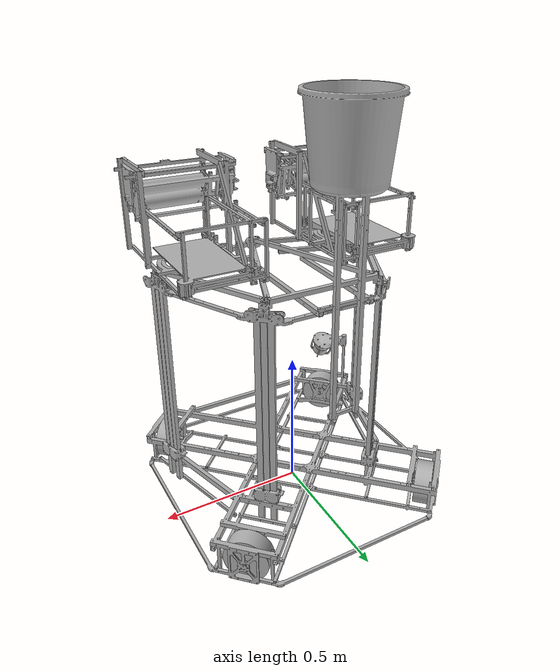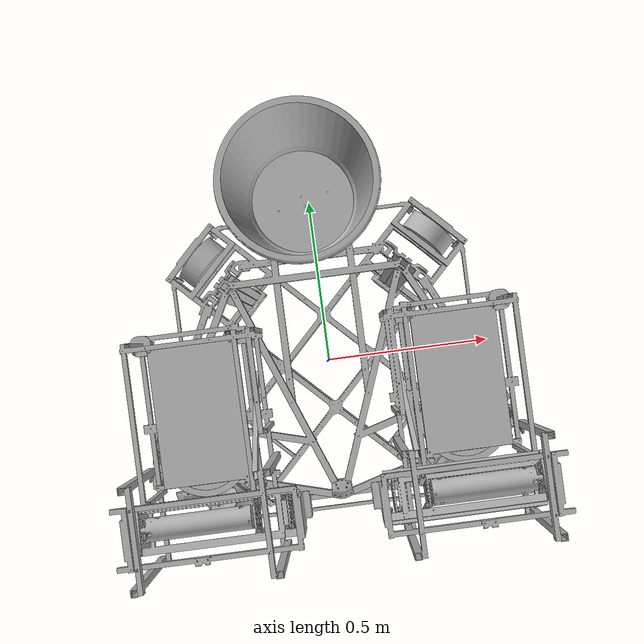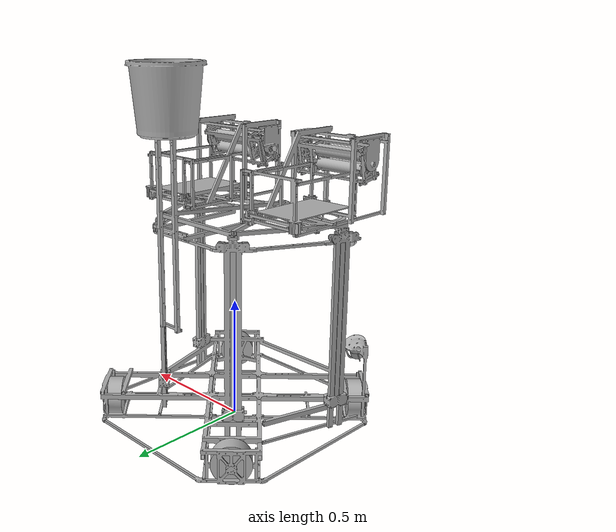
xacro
<?xml version="1.0" ?>
<robot name="r26a" xmlns:xacro="http://www.ros.org/wiki/xacro">

<xacro:include filename="$(find r26a_description)/urdf/materials.xacro" />
<xacro:include filename="$(find r26a_description)/urdf/r26a.ros2control" />
<xacro:include filename="$(find r26a_description)/urdf/r26a.gazebo" />
<link name="base_link">
  <inertial>
    <origin xyz="-0.03168375692015344 -0.032500726504693864 0.2359028738809564" rpy="0 0 0"/>
    <mass value="6.308685347440771"/>
    <inertia ixx="0.875722" iyy="1.013444" izz="1.071308" ixy="-0.065785" iyz="-0.009622" ixz="0.024378"/>
  </inertial>
  <visual>
    <origin xyz="0 0 0" rpy="0 0 0"/>
    <geometry>
      <mesh filename="file://$(find r26a_description)/meshes/base_link.stl" scale="0.001 0.001 0.001"/>
    </geometry>
    <material name="silver"/>
  </visual>
  <collision>
    <origin xyz="0 0 0" rpy="0 0 0"/>
    <geometry>
      <mesh filename="file://$(find r26a_description)/meshes/base_link.stl" scale="0.001 0.001 0.001"/>
    </geometry>
  </collision>
</link>

<link name="omni_0_1">
  <inertial>
    <origin xyz="0.02344037533707205 -0.023440727326830946 -1.096345236817342e-15" rpy="0 0 0"/>
    <mass value="2.8563365432986654"/>
    <inertia ixx="0.006591" iyy="0.006591" izz="0.004934" ixy="-0.001658" iyz="0.0" ixz="-0.0"/>
  </inertial>
  <visual>
    <origin xyz="-0.329839 0.32978 -0.0735" rpy="0 0 0"/>
    <geometry>
      <mesh filename="file://$(find r26a_description)/meshes/omni_0_1.stl" scale="0.001 0.001 0.001"/>
    </geometry>
    <material name="silver"/>
  </visual>
  <collision>
    <origin xyz="-0.329839 0.32978 -0.0735" rpy="0 0 0"/>
    <geometry>
      <mesh filename="file://$(find r26a_description)/meshes/omni_0_1.stl" scale="0.001 0.001 0.001"/>
    </geometry>
  </collision>
</link>

<link name="omni_1_1">
  <inertial>
    <origin xyz="0.02344037533707194 0.023440118082205808 -1.096345236817342e-15" rpy="0 0 0"/>
    <mass value="2.8563365432986654"/>
    <inertia ixx="0.006591" iyy="0.006591" izz="0.004934" ixy="0.001658" iyz="-0.0" ixz="0.0"/>
  </inertial>
  <visual>
    <origin xyz="-0.329839 -0.323587 -0.0735" rpy="0 0 0"/>
    <geometry>
      <mesh filename="file://$(find r26a_description)/meshes/omni_1_1.stl" scale="0.001 0.001 0.001"/>
    </geometry>
    <material name="silver"/>
  </visual>
  <collision>
    <origin xyz="-0.329839 -0.323587 -0.0735" rpy="0 0 0"/>
    <geometry>
      <mesh filename="file://$(find r26a_description)/meshes/omni_1_1.stl" scale="0.001 0.001 0.001"/>
    </geometry>
  </collision>
</link>

<link name="omni_2_1">
  <inertial>
    <origin xyz="-0.02344047007196709 0.023440118082207084 -3.3306690738754696e-16" rpy="0 0 0"/>
    <mass value="2.8563365432986654"/>
    <inertia ixx="0.006591" iyy="0.006591" izz="0.004934" ixy="-0.001658" iyz="-0.0" ixz="0.0"/>
  </inertial>
  <visual>
    <origin xyz="0.323528 -0.323587 -0.0735" rpy="0 0 0"/>
    <geometry>
      <mesh filename="file://$(find r26a_description)/meshes/omni_2_1.stl" scale="0.001 0.001 0.001"/>
    </geometry>
    <material name="silver"/>
  </visual>
  <collision>
    <origin xyz="0.323528 -0.323587 -0.0735" rpy="0 0 0"/>
    <geometry>
      <mesh filename="file://$(find r26a_description)/meshes/omni_2_1.stl" scale="0.001 0.001 0.001"/>
    </geometry>
  </collision>
</link>

<link name="omni_3_1">
  <inertial>
    <origin xyz="-0.023440470071965425 -0.02344072732683139 -2.914335439641036e-16" rpy="0 0 0"/>
    <mass value="2.8563365432986654"/>
    <inertia ixx="0.006591" iyy="0.006591" izz="0.004934" ixy="0.001658" iyz="0.0" ixz="0.0"/>
  </inertial>
  <visual>
    <origin xyz="0.323528 0.32978 -0.0735" rpy="0 0 0"/>
    <geometry>
      <mesh filename="file://$(find r26a_description)/meshes/omni_3_1.stl" scale="0.001 0.001 0.001"/>
    </geometry>
    <material name="silver"/>
  </visual>
  <collision>
    <origin xyz="0.323528 0.32978 -0.0735" rpy="0 0 0"/>
    <geometry>
      <mesh filename="file://$(find r26a_description)/meshes/omni_3_1.stl" scale="0.001 0.001 0.001"/>
    </geometry>
  </collision>
</link>

<link name="roja_frame_1">
  <inertial>
    <origin xyz="-0.4022109486773135 0.3102709468911061 0.44326734962699127" rpy="0 0 0"/>
    <mass value="5.420420342219616"/>
    <inertia ixx="1.274196" iyy="1.243385" izz="0.517105" ixy="-0.001243" iyz="-0.272952" ixz="-0.002769"/>
  </inertial>
  <visual>
    <origin xyz="-0.406331 0.181664 -0.431" rpy="0 0 0"/>
    <geometry>
      <mesh filename="file://$(find r26a_description)/meshes/roja_frame_1.stl" scale="0.001 0.001 0.001"/>
    </geometry>
    <material name="silver"/>
  </visual>
  <collision>
    <origin xyz="-0.406331 0.181664 -0.431" rpy="0 0 0"/>
    <geometry>
      <mesh filename="file://$(find r26a_description)/meshes/roja_frame_1.stl" scale="0.001 0.001 0.001"/>
    </geometry>
  </collision>
</link>

<link name="lidar_urdf_1">
  <inertial>
    <origin xyz="-3.66537550977597e-07 -0.006339534400564506 -0.013594395706134743" rpy="0 0 0"/>
    <mass value="0.22902210444669585"/>
    <inertia ixx="6.9e-05" iyy="7.5e-05" izz="9.7e-05" ixy="-0.0" iyz="1.3e-05" ixz="0.0"/>
  </inertial>
  <visual>
    <origin xyz="0.347295 0.360296 -0.292161" rpy="0 0 0"/>
    <geometry>
      <mesh filename="file://$(find r26a_description)/meshes/lidar_urdf_1.stl" scale="0.001 0.001 0.001"/>
    </geometry>
    <material name="silver"/>
  </visual>
  <collision>
    <origin xyz="0.347295 0.360296 -0.292161" rpy="0 0 0"/>
    <geometry>
      <mesh filename="file://$(find r26a_description)/meshes/lidar_urdf_1.stl" scale="0.001 0.001 0.001"/>
    </geometry>
  </collision>
</link>

<link name="cam1_1">
  <inertial>
    <origin xyz="0.00046307097252418217 -0.014798333613409403 -0.01673327243285405" rpy="0 0 0"/>
    <mass value="0.185606300457466"/>
    <inertia ixx="4.2e-05" iyy="0.000137" izz="0.000121" ixy="-1e-06" iyz="-3e-06" ixz="0.0"/>
  </inertial>
  <visual>
    <origin xyz="0.34253 0.247984 -0.7943" rpy="0 0 0"/>
    <geometry>
      <mesh filename="file://$(find r26a_description)/meshes/cam1_1.stl" scale="0.001 0.001 0.001"/>
    </geometry>
    <material name="silver"/>
  </visual>
  <collision>
    <origin xyz="0.34253 0.247984 -0.7943" rpy="0 0 0"/>
    <geometry>
      <mesh filename="file://$(find r26a_description)/meshes/cam1_1.stl" scale="0.001 0.001 0.001"/>
    </geometry>
  </collision>
</link>

<link name="cam1_cam_1">
  <inertial>
    <origin xyz="-0.02974999189282007 0.009806467863223478 -1.5918734730391293e-07" rpy="0 0 0"/>
    <mass value="0.017157190826826874"/>
    <inertia ixx="1e-06" iyy="1.4e-05" izz="1.5e-05" ixy="0.0" iyz="0.0" ixz="0.0"/>
  </inertial>
  <visual>
    <origin xyz="0.31278 0.276184 -0.7733" rpy="0 0 0"/>
    <geometry>
      <mesh filename="file://$(find r26a_description)/meshes/cam1_cam_1.stl" scale="0.001 0.001 0.001"/>
    </geometry>
    <material name="silver"/>
  </visual>
  <collision>
    <origin xyz="0.31278 0.276184 -0.7733" rpy="0 0 0"/>
    <geometry>
      <mesh filename="file://$(find r26a_description)/meshes/cam1_cam_1.stl" scale="0.001 0.001 0.001"/>
    </geometry>
  </collision>
</link>

<link name="l_roller_frame_1">
  <inertial>
    <origin xyz="0.033650450176803126 -0.03397275836580288 0.1410467363770581" rpy="0 0 0"/>
    <mass value="4.041367806112329"/>
    <inertia ixx="0.127099" iyy="0.119605" izz="0.144166" ixy="-0.003684" iyz="0.024888" ixz="-0.002617"/>
  </inertial>
  <visual>
    <origin xyz="0.292025 0.160608 -0.8695" rpy="0 0 0"/>
    <geometry>
      <mesh filename="file://$(find r26a_description)/meshes/l_roller_frame_1.stl" scale="0.001 0.001 0.001"/>
    </geometry>
    <material name="silver"/>
  </visual>
  <collision>
    <origin xyz="0.292025 0.160608 -0.8695" rpy="0 0 0"/>
    <geometry>
      <mesh filename="file://$(find r26a_description)/meshes/l_roller_frame_1.stl" scale="0.001 0.001 0.001"/>
    </geometry>
  </collision>
</link>

<link name="r_roller_frame_1">
  <inertial>
    <origin xyz="-0.033650540445284316 -0.03397275715432582 0.14104673637702214" rpy="0 0 0"/>
    <mass value="4.0413678061084966"/>
    <inertia ixx="0.127099" iyy="0.119605" izz="0.144166" ixy="0.003684" iyz="0.024888" ixz="0.002617"/>
  </inertial>
  <visual>
    <origin xyz="-0.298336 0.160608 -0.8695" rpy="0 0 0"/>
    <geometry>
      <mesh filename="file://$(find r26a_description)/meshes/r_roller_frame_1.stl" scale="0.001 0.001 0.001"/>
    </geometry>
    <material name="silver"/>
  </visual>
  <collision>
    <origin xyz="-0.298336 0.160608 -0.8695" rpy="0 0 0"/>
    <geometry>
      <mesh filename="file://$(find r26a_description)/meshes/r_roller_frame_1.stl" scale="0.001 0.001 0.001"/>
    </geometry>
  </collision>
</link>

<link name="l_roller_1">
  <inertial>
    <origin xyz="0.17080648979943058 -0.0006543169029711859 0.0009848274860233541" rpy="0 0 0"/>
    <mass value="4.685495614354369"/>
    <inertia ixx="0.008457" iyy="0.055031" izz="0.051671" ixy="4.2e-05" iyz="-0.000825" ixz="-9.5e-05"/>
  </inertial>
  <visual>
    <origin xyz="0.440203 0.28743 -1.075" rpy="0 0 0"/>
    <geometry>
      <mesh filename="file://$(find r26a_description)/meshes/l_roller_1.stl" scale="0.001 0.001 0.001"/>
    </geometry>
    <material name="silver"/>
  </visual>
  <collision>
    <origin xyz="0.440203 0.28743 -1.075" rpy="0 0 0"/>
    <geometry>
      <mesh filename="file://$(find r26a_description)/meshes/l_roller_1.stl" scale="0.001 0.001 0.001"/>
    </geometry>
  </collision>
</link>

<link name="r_roller_1">
  <inertial>
    <origin xyz="-0.17080658027428852 -0.0005659926259633519 0.001038102739798763" rpy="0 0 0"/>
    <mass value="4.685495608549223"/>
    <inertia ixx="0.008457" iyy="0.054862" izz="0.05184" ixy="-3.3e-05" iyz="-0.001104" ixz="9.9e-05"/>
  </inertial>
  <visual>
    <origin xyz="-0.446514 0.28743 -1.075" rpy="0 0 0"/>
    <geometry>
      <mesh filename="file://$(find r26a_description)/meshes/r_roller_1.stl" scale="0.001 0.001 0.001"/>
    </geometry>
    <material name="silver"/>
  </visual>
  <collision>
    <origin xyz="-0.446514 0.28743 -1.075" rpy="0 0 0"/>
    <geometry>
      <mesh filename="file://$(find r26a_description)/meshes/r_roller_1.stl" scale="0.001 0.001 0.001"/>
    </geometry>
  </collision>
</link>

<link name="r_roller_fabric_1">
  <inertial>
    <origin xyz="0.22017441435281188 0.19098089483330266 -0.990195792601456" rpy="0 0 0"/>
    <mass value="2.559068730856379"/>
    <inertia ixx="0.030249" iyy="0.012132" izz="0.042117" ixy="-0.00416" iyz="0.000327" ixz="1.9e-05"/>
  </inertial>
  <visual>
    <origin xyz="-0.07 0.2475 -1.904212" rpy="0 0 0"/>
    <geometry>
      <mesh filename="file://$(find r26a_description)/meshes/r_roller_fabric_1.stl" scale="0.001 0.001 0.001"/>
    </geometry>
    <material name="silver"/>
  </visual>
  <collision>
    <origin xyz="-0.07 0.2475 -1.904212" rpy="0 0 0"/>
    <geometry>
      <mesh filename="file://$(find r26a_description)/meshes/r_roller_fabric_1.stl" scale="0.001 0.001 0.001"/>
    </geometry>
  </collision>
</link>

<link name="l_roller_fabric_1">
  <inertial>
    <origin xyz="-0.21386350462146214 0.19098089362188397 -0.9901957926014566" rpy="0 0 0"/>
    <mass value="2.5590687308563806"/>
    <inertia ixx="0.030249" iyy="0.012132" izz="0.042117" ixy="0.00416" iyz="0.000327" ixz="-1.9e-05"/>
  </inertial>
  <visual>
    <origin xyz="0.07 0.2475 -1.904212" rpy="0 0 0"/>
    <geometry>
      <mesh filename="file://$(find r26a_description)/meshes/l_roller_fabric_1.stl" scale="0.001 0.001 0.001"/>
    </geometry>
    <material name="silver"/>
  </visual>
  <collision>
    <origin xyz="0.07 0.2475 -1.904212" rpy="0 0 0"/>
    <geometry>
      <mesh filename="file://$(find r26a_description)/meshes/l_roller_fabric_1.stl" scale="0.001 0.001 0.001"/>
    </geometry>
  </collision>
</link>

<joint name="omni_0" type="continuous">
  <origin xyz="0.329839 -0.32978 0.0735" rpy="0 0 0"/>
  <parent link="base_link"/>
  <child link="omni_0_1"/>
  <axis xyz="0.707107 -0.707107 0.0"/>
</joint>

<joint name="omni_1" type="continuous">
  <origin xyz="0.329839 0.323587 0.0735" rpy="0 0 0"/>
  <parent link="base_link"/>
  <child link="omni_1_1"/>
  <axis xyz="0.707107 0.707107 -0.0"/>
</joint>

<joint name="omni_2" type="continuous">
  <origin xyz="-0.323528 0.323587 0.0735" rpy="0 0 0"/>
  <parent link="base_link"/>
  <child link="omni_2_1"/>
  <axis xyz="-0.707107 0.707107 -0.0"/>
</joint>

<joint name="omni_3" type="continuous">
  <origin xyz="-0.323528 -0.32978 0.0735" rpy="0 0 0"/>
  <parent link="base_link"/>
  <child link="omni_3_1"/>
  <axis xyz="-0.707107 -0.707107 -0.0"/>
</joint>

<joint name="roja" type="prismatic">
  <origin xyz="0.406331 -0.181664 0.431" rpy="0 0 0"/>
  <parent link="base_link"/>
  <child link="roja_frame_1"/>
  <axis xyz="0.0 0.0 1.0"/>
  <limit upper="0.624" lower="0.0" effort="100" velocity="100"/>
</joint>

<joint name="lidar" type="fixed">
  <origin xyz="-0.347295 -0.360296 0.292161" rpy="0 0 0"/>
  <parent link="base_link"/>
  <child link="lidar_urdf_1"/>
</joint>

<joint name="cam1" type="revolute">
  <origin xyz="-0.34253 -0.247984 0.7943" rpy="0 0 0"/>
  <parent link="base_link"/>
  <child link="cam1_1"/>
  <axis xyz="-1.0 0.0 -0.0"/>
  <limit upper="0.872665" lower="-1.047198" effort="100" velocity="100"/>
</joint>

<joint name="cam1_cam" type="fixed">
  <origin xyz="0.02975 -0.0282 -0.021" rpy="0 0 0"/>
  <parent link="cam1_1"/>
  <child link="cam1_cam_1"/>
</joint>

<joint name="l_roller_z" type="revolute">
  <origin xyz="-0.698356 0.021056 0.4385" rpy="0 0 0"/>
  <parent link="roja_frame_1"/>
  <child link="l_roller_frame_1"/>
  <axis xyz="0.0 -0.0 1.0"/>
  <limit upper="0.261799" lower="-0.523599" effort="100" velocity="100"/>
</joint>

<joint name="r_roller_z" type="revolute">
  <origin xyz="-0.107995 0.021056 0.4385" rpy="0 0 0"/>
  <parent link="roja_frame_1"/>
  <child link="r_roller_frame_1"/>
  <axis xyz="-0.0 -0.0 1.0"/>
  <limit upper="0.523599" lower="-0.261799" effort="100" velocity="100"/>
</joint>

<joint name="l_roller_x" type="revolute">
  <origin xyz="-0.148178 -0.126822 0.2055" rpy="0 0 0"/>
  <parent link="l_roller_frame_1"/>
  <child link="l_roller_1"/>
  <axis xyz="-1.0 -0.0 -0.0"/>
  <limit upper="0.436332" lower="0.0" effort="100" velocity="100"/>
</joint>

<joint name="r_roller_x" type="revolute">
  <origin xyz="0.148178 -0.126822 0.2055" rpy="0 0 0"/>
  <parent link="r_roller_frame_1"/>
  <child link="r_roller_1"/>
  <axis xyz="-1.0 0.0 -0.0"/>
  <limit upper="0.436332" lower="0.0" effort="100" velocity="100"/>
</joint>

<joint name="r_roller_fabric" type="prismatic">
  <origin xyz="-0.228336 -0.086892 1.034712" rpy="0 0 0"/>
  <parent link="r_roller_frame_1"/>
  <child link="r_roller_fabric_1"/>
  <axis xyz="-0.0 -0.0 1.0"/>
  <limit upper="0.08" lower="0.0" effort="100" velocity="100"/>
</joint>

<joint name="l_roller_fabric" type="prismatic">
  <origin xyz="0.222025 -0.086892 1.034712" rpy="0 0 0"/>
  <parent link="l_roller_frame_1"/>
  <child link="l_roller_fabric_1"/>
  <axis xyz="0.0 -0.0 -1.0"/>
  <limit upper="0.0" lower="-0.08" effort="100" velocity="100"/>
</joint>

</robot>

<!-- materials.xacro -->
<robot name="r26a" xmlns:xacro="http://www.ros.org/wiki/xacro" >

<material name="silver">
  <color rgba="0.700 0.700 0.700 1.000"/>
</material>

</robot>

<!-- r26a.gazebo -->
<robot name="r26a" xmlns:xacro="http://www.ros.org/wiki/xacro" >

<xacro:property name="body_color" value="Gazebo/Silver" />

<gazebo reference="base_link">
  <material>${body_color}</material>
  <mu1>0.2</mu1>
  <mu2>0.2</mu2>
  <self_collide>true</self_collide>
  <gravity>true</gravity>
</gazebo>

<gazebo reference="omni_0_1">
  <material>${body_color}</material>
  <mu1>0.2</mu1>
  <mu2>0.2</mu2>
  <self_collide>true</self_collide>
</gazebo>

<gazebo reference="omni_1_1">
  <material>${body_color}</material>
  <mu1>0.2</mu1>
  <mu2>0.2</mu2>
  <self_collide>true</self_collide>
</gazebo>

<gazebo reference="omni_2_1">
  <material>${body_color}</material>
  <mu1>0.2</mu1>
  <mu2>0.2</mu2>
  <self_collide>true</self_collide>
</gazebo>

<gazebo reference="omni_3_1">
  <material>${body_color}</material>
  <mu1>0.2</mu1>
  <mu2>0.2</mu2>
  <self_collide>true</self_collide>
</gazebo>

<gazebo reference="roja_frame_1">
  <material>${body_color}</material>
  <mu1>0.2</mu1>
  <mu2>0.2</mu2>
  <self_collide>true</self_collide>
</gazebo>

<gazebo reference="lidar_urdf_1">
  <material>${body_color}</material>
  <mu1>0.2</mu1>
  <mu2>0.2</mu2>
  <self_collide>true</self_collide>
</gazebo>

<gazebo reference="cam1_1">
  <material>${body_color}</material>
  <mu1>0.2</mu1>
  <mu2>0.2</mu2>
  <self_collide>true</self_collide>
</gazebo>

<gazebo reference="cam1_cam_1">
  <material>${body_color}</material>
  <mu1>0.2</mu1>
  <mu2>0.2</mu2>
  <self_collide>true</self_collide>
</gazebo>

<gazebo reference="l_roller_frame_1">
  <material>${body_color}</material>
  <mu1>0.2</mu1>
  <mu2>0.2</mu2>
  <self_collide>true</self_collide>
</gazebo>

<gazebo reference="r_roller_frame_1">
  <material>${body_color}</material>
  <mu1>0.2</mu1>
  <mu2>0.2</mu2>
  <self_collide>true</self_collide>
</gazebo>

<gazebo reference="l_roller_1">
  <material>${body_color}</material>
  <mu1>0.2</mu1>
  <mu2>0.2</mu2>
  <self_collide>true</self_collide>
</gazebo>

<gazebo reference="r_roller_1">
  <material>${body_color}</material>
  <mu1>0.2</mu1>
  <mu2>0.2</mu2>
  <self_collide>true</self_collide>
</gazebo>

<gazebo reference="r_roller_fabric_1">
  <material>${body_color}</material>
  <mu1>0.2</mu1>
  <mu2>0.2</mu2>
  <self_collide>true</self_collide>
</gazebo>

<gazebo reference="l_roller_fabric_1">
  <material>${body_color}</material>
  <mu1>0.2</mu1>
  <mu2>0.2</mu2>
  <self_collide>true</self_collide>
</gazebo>

</robot>
